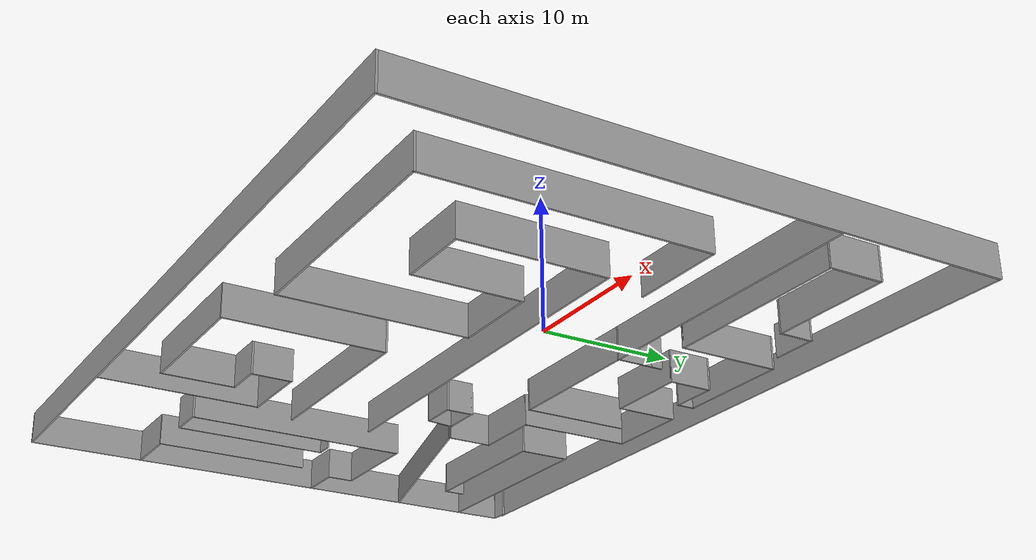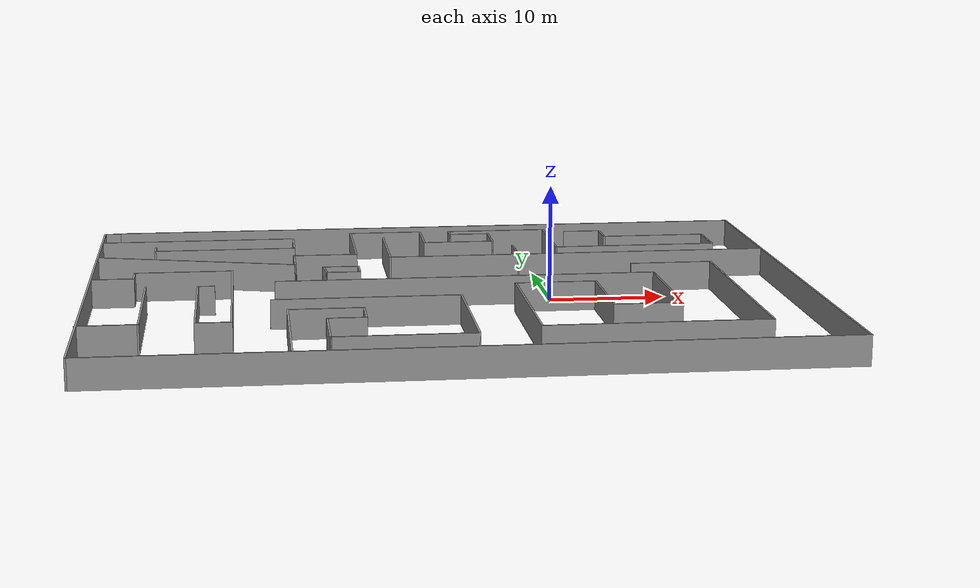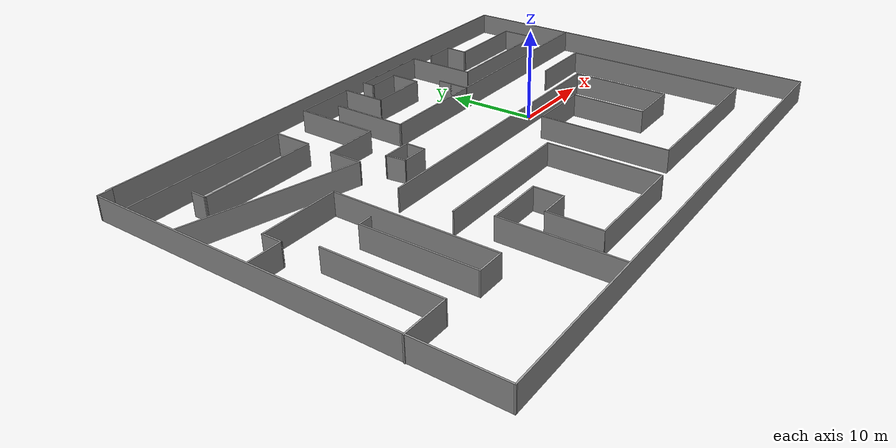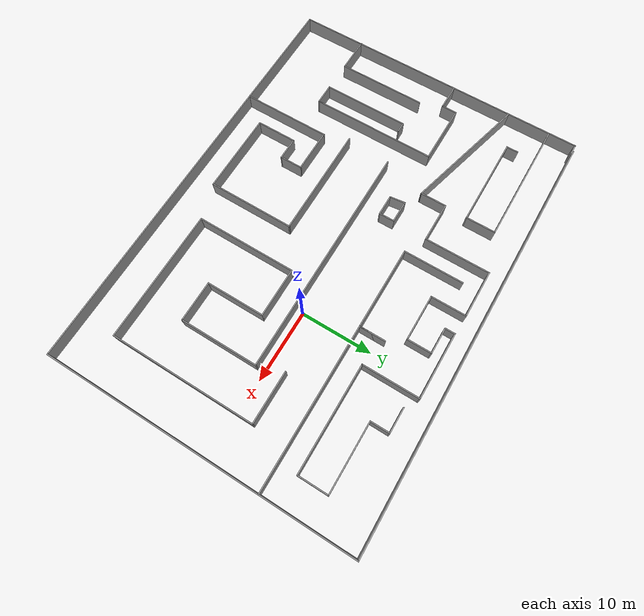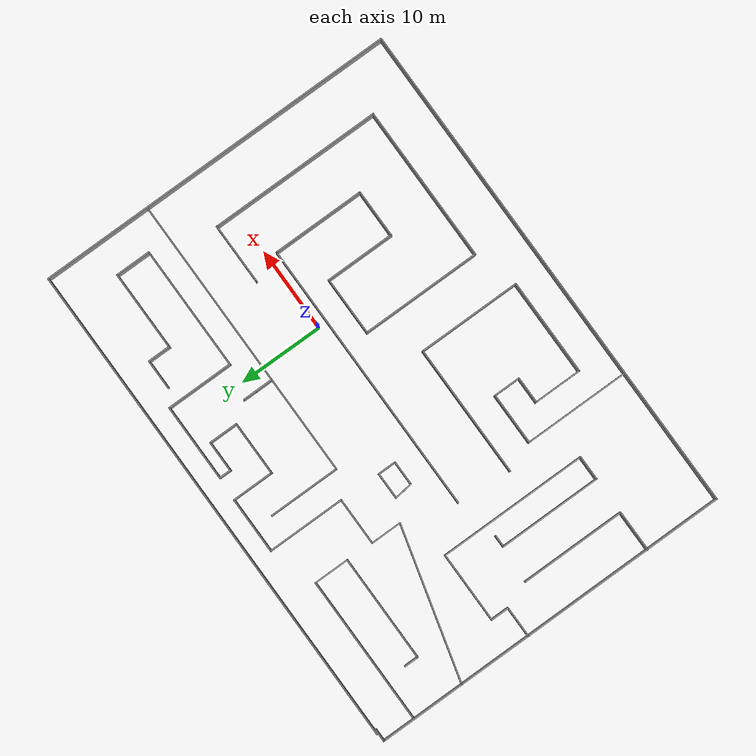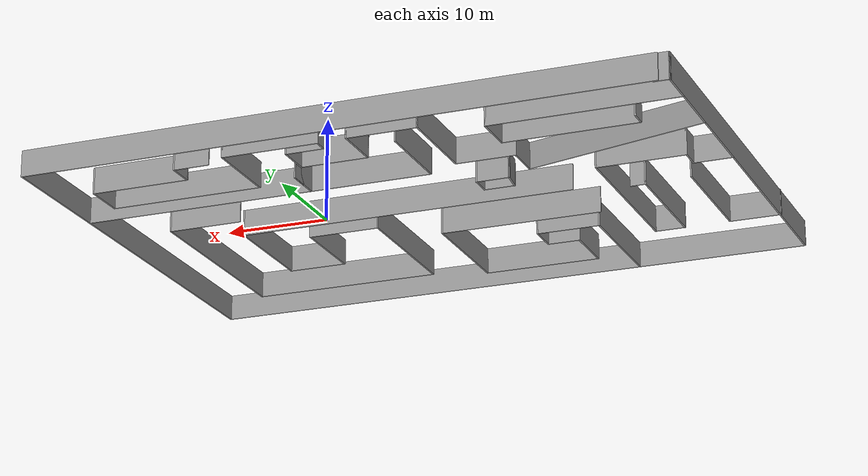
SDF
<?xml version='1.0'?>
<sdf version='1.6'>
  <model name='floorplan'>
    <pose frame=''>-9.29176 -1.54774 0 0 -0 0</pose>
    <link name='Wall_10'>
      <collision name='Wall_10_Collision'>
        <geometry>
          <box>
            <size>60.25 0.15 2.5</size>
          </box>
        </geometry>
        <pose frame=''>0 0 1.25 0 -0 0</pose>
      </collision>
      <visual name='Wall_10_Visual'>
        <pose frame=''>0 0 1.25 0 -0 0</pose>
        <geometry>
          <box>
            <size>60.25 0.15 2.5</size>
          </box>
        </geometry>
        <material>
          <script>
            <uri>file://media/materials/scripts/gazebo.material</uri>
            <name>Gazebo/Grey</name>
          </script>
          <ambient>1 1 1 1</ambient>
        </material>
        <meta>
          <layer>0</layer>
        </meta>
      </visual>
      <pose frame=''>0.03803 -21.675 0 0 -0 3.14159</pose>
    </link>
    <link name='Wall_11'>
      <collision name='Wall_11_Collision'>
        <geometry>
          <box>
            <size>43.25 0.15 2.5</size>
          </box>
        </geometry>
        <pose frame=''>0 0 1.25 0 -0 0</pose>
      </collision>
      <visual name='Wall_11_Visual'>
        <pose frame=''>0 0 1.25 0 -0 0</pose>
        <geometry>
          <box>
            <size>43.25 0.15 2.5</size>
          </box>
        </geometry>
        <material>
          <script>
            <uri>file://media/materials/scripts/gazebo.material</uri>
            <name>Gazebo/Grey</name>
          </script>
          <ambient>1 1 1 1</ambient>
        </material>
        <meta>
          <layer>0</layer>
        </meta>
      </visual>
      <pose frame=''>-30.012 -0.124999 0 0 -0 1.5708</pose>
    </link>
    <link name='Wall_12'>
      <collision name='Wall_12_Collision'>
        <geometry>
          <box>
            <size>0.25 0.15 2.5</size>
          </box>
        </geometry>
        <pose frame=''>0 0 1.25 0 -0 0</pose>
      </collision>
      <visual name='Wall_12_Visual'>
        <pose frame=''>0 0 1.25 0 -0 0</pose>
        <geometry>
          <box>
            <size>0.25 0.15 2.5</size>
          </box>
        </geometry>
        <material>
          <script>
            <uri>file://media/materials/scripts/gazebo.material</uri>
            <name>Gazebo/Grey</name>
          </script>
          <ambient>1 1 1 1</ambient>
        </material>
        <meta>
          <layer>0</layer>
        </meta>
      </visual>
      <pose frame=''>-29.999 21.4733 0 0 -0 1.309</pose>
    </link>
    <link name='Wall_13'>
      <collision name='Wall_13_Collision'>
        <geometry>
          <box>
            <size>1.5 0.15 2.5</size>
          </box>
        </geometry>
        <pose frame=''>0 0 1.25 0 -0 0</pose>
      </collision>
      <visual name='Wall_13_Visual'>
        <pose frame=''>0 0 1.25 0 -0 0</pose>
        <geometry>
          <box>
            <size>1.5 0.15 2.5</size>
          </box>
        </geometry>
        <material>
          <script>
            <uri>file://media/materials/scripts/gazebo.material</uri>
            <name>Gazebo/Grey</name>
          </script>
          <ambient>1 1 1 1</ambient>
        </material>
        <meta>
          <layer>0</layer>
        </meta>
      </visual>
      <pose frame=''>-29.3111 21.5216 0 0 -0 0</pose>
    </link>
    <link name='Wall_15'>
      <collision name='Wall_15_Collision'>
        <geometry>
          <box>
            <size>17.75 0.15 2.5</size>
          </box>
        </geometry>
        <pose frame=''>0 0 1.25 0 -0 0</pose>
      </collision>
      <visual name='Wall_15_Visual'>
        <pose frame=''>0 0 1.25 0 -0 0</pose>
        <geometry>
          <box>
            <size>17.75 0.15 2.5</size>
          </box>
        </geometry>
        <material>
          <script>
            <uri>file://media/materials/scripts/gazebo.material</uri>
            <name>Gazebo/Grey</name>
          </script>
          <ambient>1 1 1 1</ambient>
        </material>
        <meta>
          <layer>0</layer>
        </meta>
      </visual>
      <pose frame=''>-21.1943 17.621 0 0 -0 0</pose>
    </link>
    <link name='Wall_16'>
      <collision name='Wall_16_Collision'>
        <geometry>
          <box>
            <size>4.25 0.15 2.5</size>
          </box>
        </geometry>
        <pose frame=''>0 0 1.25 0 -0 0</pose>
      </collision>
      <visual name='Wall_16_Visual'>
        <pose frame=''>0 0 1.25 0 -0 0</pose>
        <geometry>
          <box>
            <size>4.25 0.15 2.5</size>
          </box>
        </geometry>
        <material>
          <script>
            <uri>file://media/materials/scripts/gazebo.material</uri>
            <name>Gazebo/Grey</name>
          </script>
          <ambient>1 1 1 1</ambient>
        </material>
        <meta>
          <layer>0</layer>
        </meta>
      </visual>
      <pose frame=''>-12.3943 15.571 0 0 -0 -1.5708</pose>
    </link>
    <link name='Wall_17'>
      <collision name='Wall_17_Collision'>
        <geometry>
          <box>
            <size>12.75 0.15 2.5</size>
          </box>
        </geometry>
        <pose frame=''>0 0 1.25 0 -0 0</pose>
      </collision>
      <visual name='Wall_17_Visual'>
        <pose frame=''>0 0 1.25 0 -0 0</pose>
        <geometry>
          <box>
            <size>12.75 0.15 2.5</size>
          </box>
        </geometry>
        <material>
          <script>
            <uri>file://media/materials/scripts/gazebo.material</uri>
            <name>Gazebo/Grey</name>
          </script>
          <ambient>1 1 1 1</ambient>
        </material>
        <meta>
          <layer>0</layer>
        </meta>
      </visual>
      <pose frame=''>-18.6943 13.521 0 0 -0 3.14159</pose>
    </link>
    <link name='Wall_18'>
      <collision name='Wall_18_Collision'>
        <geometry>
          <box>
            <size>1.75 0.15 2.5</size>
          </box>
        </geometry>
        <pose frame=''>0 0 1.25 0 -0 0</pose>
      </collision>
      <visual name='Wall_18_Visual'>
        <pose frame=''>0 0 1.25 0 -0 0</pose>
        <geometry>
          <box>
            <size>1.75 0.15 2.5</size>
          </box>
        </geometry>
        <material>
          <script>
            <uri>file://media/materials/scripts/gazebo.material</uri>
            <name>Gazebo/Grey</name>
          </script>
          <ambient>1 1 1 1</ambient>
        </material>
        <meta>
          <layer>0</layer>
        </meta>
      </visual>
      <pose frame=''>-24.9943 14.321 0 0 -0 1.5708</pose>
    </link>
    <link name='Wall_20'>
      <collision name='Wall_20_Collision'>
        <geometry>
          <box>
            <size>18.25 0.15 2.5</size>
          </box>
        </geometry>
        <pose frame=''>0 0 1.25 0 -0 0</pose>
      </collision>
      <visual name='Wall_20_Visual'>
        <pose frame=''>0 0 1.25 0 -0 0</pose>
        <geometry>
          <box>
            <size>18.25 0.15 2.5</size>
          </box>
        </geometry>
        <material>
          <script>
            <uri>file://media/materials/scripts/gazebo.material</uri>
            <name>Gazebo/Grey</name>
          </script>
          <ambient>1 1 1 1</ambient>
        </material>
        <meta>
          <layer>0</layer>
        </meta>
      </visual>
      <pose frame=''>-21.2527 9.09449 0 0 -0 -0.261799</pose>
    </link>
    <link name='Wall_21'>
      <collision name='Wall_21_Collision'>
        <geometry>
          <box>
            <size>3.75 0.15 2.5</size>
          </box>
        </geometry>
        <pose frame=''>0 0 1.25 0 -0 0</pose>
      </collision>
      <visual name='Wall_21_Visual'>
        <pose frame=''>0 0 1.25 0 -0 0</pose>
        <geometry>
          <box>
            <size>3.75 0.15 2.5</size>
          </box>
        </geometry>
        <material>
          <script>
            <uri>file://media/materials/scripts/gazebo.material</uri>
            <name>Gazebo/Grey</name>
          </script>
          <ambient>1 1 1 1</ambient>
        </material>
        <meta>
          <layer>0</layer>
        </meta>
      </visual>
      <pose frame=''>-12.5111 8.55218 0 0 -0 1.5708</pose>
    </link>
    <link name='Wall_22'>
      <collision name='Wall_22_Collision'>
        <geometry>
          <box>
            <size>5.75 0.15 2.5</size>
          </box>
        </geometry>
        <pose frame=''>0 0 1.25 0 -0 0</pose>
      </collision>
      <visual name='Wall_22_Visual'>
        <pose frame=''>0 0 1.25 0 -0 0</pose>
        <geometry>
          <box>
            <size>5.75 0.15 2.5</size>
          </box>
        </geometry>
        <material>
          <script>
            <uri>file://media/materials/scripts/gazebo.material</uri>
            <name>Gazebo/Grey</name>
          </script>
          <ambient>1 1 1 1</ambient>
        </material>
        <meta>
          <layer>0</layer>
        </meta>
      </visual>
      <pose frame=''>-9.71106 10.3522 0 0 -0 0</pose>
    </link>
    <link name='Wall_23'>
      <collision name='Wall_23_Collision'>
        <geometry>
          <box>
            <size>9.25 0.15 2.5</size>
          </box>
        </geometry>
        <pose frame=''>0 0 1.25 0 -0 0</pose>
      </collision>
      <visual name='Wall_23_Visual'>
        <pose frame=''>0 0 1.25 0 -0 0</pose>
        <geometry>
          <box>
            <size>9.25 0.15 2.5</size>
          </box>
        </geometry>
        <material>
          <script>
            <uri>file://media/materials/scripts/gazebo.material</uri>
            <name>Gazebo/Grey</name>
          </script>
          <ambient>1 1 1 1</ambient>
        </material>
        <meta>
          <layer>0</layer>
        </meta>
      </visual>
      <pose frame=''>-6.91106 14.9022 0 0 -0 1.5708</pose>
    </link>
    <link name='Wall_24'>
      <collision name='Wall_24_Collision'>
        <geometry>
          <box>
            <size>6.75 0.15 2.5</size>
          </box>
        </geometry>
        <pose frame=''>0 0 1.25 0 -0 0</pose>
      </collision>
      <visual name='Wall_24_Visual'>
        <pose frame=''>0 0 1.25 0 -0 0</pose>
        <geometry>
          <box>
            <size>6.75 0.15 2.5</size>
          </box>
        </geometry>
        <material>
          <script>
            <uri>file://media/materials/scripts/gazebo.material</uri>
            <name>Gazebo/Grey</name>
          </script>
          <ambient>1 1 1 1</ambient>
        </material>
        <meta>
          <layer>0</layer>
        </meta>
      </visual>
      <pose frame=''>-3.61106 19.4522 0 0 -0 0</pose>
    </link>
    <link name='Wall_25'>
      <collision name='Wall_25_Collision'>
        <geometry>
          <box>
            <size>5 0.15 2.5</size>
          </box>
        </geometry>
        <pose frame=''>0 0 1.25 0 -0 0</pose>
      </collision>
      <visual name='Wall_25_Visual'>
        <pose frame=''>0 0 1.25 0 -0 0</pose>
        <geometry>
          <box>
            <size>5 0.15 2.5</size>
          </box>
        </geometry>
        <material>
          <script>
            <uri>file://media/materials/scripts/gazebo.material</uri>
            <name>Gazebo/Grey</name>
          </script>
          <ambient>1 1 1 1</ambient>
        </material>
        <meta>
          <layer>0</layer>
        </meta>
      </visual>
      <pose frame=''>-0.311056 17.0272 0 0 -0 -1.5708</pose>
    </link>
    <link name='Wall_26'>
      <collision name='Wall_26_Collision'>
        <geometry>
          <box>
            <size>6.5 0.15 2.5</size>
          </box>
        </geometry>
        <pose frame=''>0 0 1.25 0 -0 0</pose>
      </collision>
      <visual name='Wall_26_Visual'>
        <pose frame=''>0 0 1.25 0 -0 0</pose>
        <geometry>
          <box>
            <size>6.5 0.15 2.5</size>
          </box>
        </geometry>
        <material>
          <script>
            <uri>file://media/materials/scripts/gazebo.material</uri>
            <name>Gazebo/Grey</name>
          </script>
          <ambient>1 1 1 1</ambient>
        </material>
        <meta>
          <layer>0</layer>
        </meta>
      </visual>
      <pose frame=''>2.86394 14.6022 0 0 -0 0</pose>
    </link>
    <link name='Wall_27'>
      <collision name='Wall_27_Collision'>
        <geometry>
          <box>
            <size>3.5 0.15 2.5</size>
          </box>
        </geometry>
        <pose frame=''>0 0 1.25 0 -0 0</pose>
      </collision>
      <visual name='Wall_27_Visual'>
        <pose frame=''>0 0 1.25 0 -0 0</pose>
        <geometry>
          <box>
            <size>3.5 0.15 2.5</size>
          </box>
        </geometry>
        <material>
          <script>
            <uri>file://media/materials/scripts/gazebo.material</uri>
            <name>Gazebo/Grey</name>
          </script>
          <ambient>1 1 1 1</ambient>
        </material>
        <meta>
          <layer>0</layer>
        </meta>
      </visual>
      <pose frame=''>6.03894 16.2772 0 0 -0 1.5708</pose>
    </link>
    <link name='Wall_28'>
      <collision name='Wall_28_Collision'>
        <geometry>
          <box>
            <size>3.75 0.15 2.5</size>
          </box>
        </geometry>
        <pose frame=''>0 0 1.25 0 -0 0</pose>
      </collision>
      <visual name='Wall_28_Visual'>
        <pose frame=''>0 0 1.25 0 -0 0</pose>
        <geometry>
          <box>
            <size>3.75 0.15 2.5</size>
          </box>
        </geometry>
        <material>
          <script>
            <uri>file://media/materials/scripts/gazebo.material</uri>
            <name>Gazebo/Grey</name>
          </script>
          <ambient>1 1 1 1</ambient>
        </material>
        <meta>
          <layer>0</layer>
        </meta>
      </visual>
      <pose frame=''>4.23894 17.9522 0 0 -0 3.14159</pose>
    </link>
    <link name='Wall_29'>
      <collision name='Wall_29_Collision'>
        <geometry>
          <box>
            <size>1.5 0.15 2.5</size>
          </box>
        </geometry>
        <pose frame=''>0 0 1.25 0 -0 0</pose>
      </collision>
      <visual name='Wall_29_Visual'>
        <pose frame=''>0 0 1.25 0 -0 0</pose>
        <geometry>
          <box>
            <size>1.5 0.15 2.5</size>
          </box>
        </geometry>
        <material>
          <script>
            <uri>file://media/materials/scripts/gazebo.material</uri>
            <name>Gazebo/Grey</name>
          </script>
          <ambient>1 1 1 1</ambient>
        </material>
        <meta>
          <layer>0</layer>
        </meta>
      </visual>
      <pose frame=''>2.43894 18.6272 0 0 -0 1.5708</pose>
    </link>
    <link name='Wall_30'>
      <collision name='Wall_30_Collision'>
        <geometry>
          <box>
            <size>9.25 0.15 2.5</size>
          </box>
        </geometry>
        <pose frame=''>0 0 1.25 0 -0 0</pose>
      </collision>
      <visual name='Wall_30_Visual'>
        <pose frame=''>0 0 1.25 0 -0 0</pose>
        <geometry>
          <box>
            <size>9.25 0.15 2.5</size>
          </box>
        </geometry>
        <material>
          <script>
            <uri>file://media/materials/scripts/gazebo.material</uri>
            <name>Gazebo/Grey</name>
          </script>
          <ambient>1 1 1 1</ambient>
        </material>
        <meta>
          <layer>0</layer>
        </meta>
      </visual>
      <pose frame=''>6.98894 19.3022 0 0 -0 0</pose>
    </link>
    <link name='Wall_31'>
      <collision name='Wall_31_Collision'>
        <geometry>
          <box>
            <size>8 0.15 2.5</size>
          </box>
        </geometry>
        <pose frame=''>0 0 1.25 0 -0 0</pose>
      </collision>
      <visual name='Wall_31_Visual'>
        <pose frame=''>0 0 1.25 0 -0 0</pose>
        <geometry>
          <box>
            <size>8 0.15 2.5</size>
          </box>
        </geometry>
        <material>
          <script>
            <uri>file://media/materials/scripts/gazebo.material</uri>
            <name>Gazebo/Grey</name>
          </script>
          <ambient>1 1 1 1</ambient>
        </material>
        <meta>
          <layer>0</layer>
        </meta>
      </visual>
      <pose frame=''>11.5389 15.3772 0 0 -0 -1.5708</pose>
    </link>
    <link name='Wall_32'>
      <collision name='Wall_32_Collision'>
        <geometry>
          <box>
            <size>14.75 0.15 2.5</size>
          </box>
        </geometry>
        <pose frame=''>0 0 1.25 0 -0 0</pose>
      </collision>
      <visual name='Wall_32_Visual'>
        <pose frame=''>0 0 1.25 0 -0 0</pose>
        <geometry>
          <box>
            <size>14.75 0.15 2.5</size>
          </box>
        </geometry>
        <material>
          <script>
            <uri>file://media/materials/scripts/gazebo.material</uri>
            <name>Gazebo/Grey</name>
          </script>
          <ambient>1 1 1 1</ambient>
        </material>
        <meta>
          <layer>0</layer>
        </meta>
      </visual>
      <pose frame=''>18.8389 11.4522 0 0 -0 0</pose>
    </link>
    <link name='Wall_33'>
      <collision name='Wall_33_Collision'>
        <geometry>
          <box>
            <size>4.25 0.15 2.5</size>
          </box>
        </geometry>
        <pose frame=''>0 0 1.25 0 -0 0</pose>
      </collision>
      <visual name='Wall_33_Visual'>
        <pose frame=''>0 0 1.25 0 -0 0</pose>
        <geometry>
          <box>
            <size>4.25 0.15 2.5</size>
          </box>
        </geometry>
        <material>
          <script>
            <uri>file://media/materials/scripts/gazebo.material</uri>
            <name>Gazebo/Grey</name>
          </script>
          <ambient>1 1 1 1</ambient>
        </material>
        <meta>
          <layer>0</layer>
        </meta>
      </visual>
      <pose frame=''>26.1389 13.5022 0 0 -0 1.5708</pose>
    </link>
    <link name='Wall_34'>
      <collision name='Wall_34_Collision'>
        <geometry>
          <box>
            <size>9.5 0.15 2.5</size>
          </box>
        </geometry>
        <pose frame=''>0 0 1.25 0 -0 0</pose>
      </collision>
      <visual name='Wall_34_Visual'>
        <pose frame=''>0 0 1.25 0 -0 0</pose>
        <geometry>
          <box>
            <size>9.5 0.15 2.5</size>
          </box>
        </geometry>
        <material>
          <script>
            <uri>file://media/materials/scripts/gazebo.material</uri>
            <name>Gazebo/Grey</name>
          </script>
          <ambient>1 1 1 1</ambient>
        </material>
        <meta>
          <layer>0</layer>
        </meta>
      </visual>
      <pose frame=''>21.4639 15.5522 0 0 -0 3.14159</pose>
    </link>
    <link name='Wall_35'>
      <collision name='Wall_35_Collision'>
        <geometry>
          <box>
            <size>2.75 0.15 2.5</size>
          </box>
        </geometry>
        <pose frame=''>0 0 1.25 0 -0 0</pose>
      </collision>
      <visual name='Wall_35_Visual'>
        <pose frame=''>0 0 1.25 0 -0 0</pose>
        <geometry>
          <box>
            <size>2.75 0.15 2.5</size>
          </box>
        </geometry>
        <material>
          <script>
            <uri>file://media/materials/scripts/gazebo.material</uri>
            <name>Gazebo/Grey</name>
          </script>
          <ambient>1 1 1 1</ambient>
        </material>
        <meta>
          <layer>0</layer>
        </meta>
      </visual>
      <pose frame=''>16.7889 16.8522 0 0 -0 1.5708</pose>
    </link>
    <link name='Wall_36'>
      <collision name='Wall_36_Collision'>
        <geometry>
          <box>
            <size>3.5 0.15 2.5</size>
          </box>
        </geometry>
        <pose frame=''>0 0 1.25 0 -0 0</pose>
      </collision>
      <visual name='Wall_36_Visual'>
        <pose frame=''>0 0 1.25 0 -0 0</pose>
        <geometry>
          <box>
            <size>3.5 0.15 2.5</size>
          </box>
        </geometry>
        <material>
          <script>
            <uri>file://media/materials/scripts/gazebo.material</uri>
            <name>Gazebo/Grey</name>
          </script>
          <ambient>1 1 1 1</ambient>
        </material>
        <meta>
          <layer>0</layer>
        </meta>
      </visual>
      <pose frame=''>15.1139 18.1522 0 0 -0 3.14159</pose>
    </link>
    <link name='Wall_38'>
      <collision name='Wall_38_Collision'>
        <geometry>
          <box>
            <size>22.5 0.15 2.5</size>
          </box>
        </geometry>
        <pose frame=''>0 0 1.25 0 -0 0</pose>
      </collision>
      <visual name='Wall_38_Visual'>
        <pose frame=''>0 0 1.25 0 -0 0</pose>
        <geometry>
          <box>
            <size>22.5 0.15 2.5</size>
          </box>
        </geometry>
        <material>
          <script>
            <uri>file://media/materials/scripts/gazebo.material</uri>
            <name>Gazebo/Grey</name>
          </script>
          <ambient>1 1 1 1</ambient>
        </material>
        <meta>
          <layer>0</layer>
        </meta>
      </visual>
      <pose frame=''>18.8008 8.83295 0 0 -0 3.14159</pose>
    </link>
    <link name='Wall_39'>
      <collision name='Wall_39_Collision'>
        <geometry>
          <box>
            <size>3.75 0.15 2.5</size>
          </box>
        </geometry>
        <pose frame=''>0 0 1.25 0 -0 0</pose>
      </collision>
      <visual name='Wall_39_Visual'>
        <pose frame=''>0 0 1.25 0 -0 0</pose>
        <geometry>
          <box>
            <size>3.75 0.15 2.5</size>
          </box>
        </geometry>
        <material>
          <script>
            <uri>file://media/materials/scripts/gazebo.material</uri>
            <name>Gazebo/Grey</name>
          </script>
          <ambient>1 1 1 1</ambient>
        </material>
        <meta>
          <layer>0</layer>
        </meta>
      </visual>
      <pose frame=''>7.62583 10.6329 0 0 -0 1.5708</pose>
    </link>
    <link name='Wall_40'>
      <collision name='Wall_40_Collision'>
        <geometry>
          <box>
            <size>3.75 0.15 2.5</size>
          </box>
        </geometry>
        <pose frame=''>0 0 1.25 0 -0 0</pose>
      </collision>
      <visual name='Wall_40_Visual'>
        <pose frame=''>0 0 1.25 0 -0 0</pose>
        <geometry>
          <box>
            <size>3.75 0.15 2.5</size>
          </box>
        </geometry>
        <material>
          <script>
            <uri>file://media/materials/scripts/gazebo.material</uri>
            <name>Gazebo/Grey</name>
          </script>
          <ambient>1 1 1 1</ambient>
        </material>
        <meta>
          <layer>0</layer>
        </meta>
      </visual>
      <pose frame=''>7.62583 10.6329 0 0 -0 -1.5708</pose>
    </link>
    <link name='Wall_41'>
      <collision name='Wall_41_Collision'>
        <geometry>
          <box>
            <size>11.75 0.15 2.5</size>
          </box>
        </geometry>
        <pose frame=''>0 0 1.25 0 -0 0</pose>
      </collision>
      <visual name='Wall_41_Visual'>
        <pose frame=''>0 0 1.25 0 -0 0</pose>
        <geometry>
          <box>
            <size>11.75 0.15 2.5</size>
          </box>
        </geometry>
        <material>
          <script>
            <uri>file://media/materials/scripts/gazebo.material</uri>
            <name>Gazebo/Grey</name>
          </script>
          <ambient>1 1 1 1</ambient>
        </material>
        <meta>
          <layer>0</layer>
        </meta>
      </visual>
      <pose frame=''>1.82583 8.83295 0 0 -0 3.14159</pose>
    </link>
    <link name='Wall_42'>
      <collision name='Wall_42_Collision'>
        <geometry>
          <box>
            <size>8.5 0.15 2.5</size>
          </box>
        </geometry>
        <pose frame=''>0 0 1.25 0 -0 0</pose>
      </collision>
      <visual name='Wall_42_Visual'>
        <pose frame=''>0 0 1.25 0 -0 0</pose>
        <geometry>
          <box>
            <size>8.5 0.15 2.5</size>
          </box>
        </geometry>
        <material>
          <script>
            <uri>file://media/materials/scripts/gazebo.material</uri>
            <name>Gazebo/Grey</name>
          </script>
          <ambient>1 1 1 1</ambient>
        </material>
        <meta>
          <layer>0</layer>
        </meta>
      </visual>
      <pose frame=''>-3.97417 13.0079 0 0 -0 1.5708</pose>
    </link>
    <link name='Wall_44'>
      <collision name='Wall_44_Collision'>
        <geometry>
          <box>
            <size>3.75 0.15 2.5</size>
          </box>
        </geometry>
        <pose frame=''>0 0 1.25 0 -0 0</pose>
      </collision>
      <visual name='Wall_44_Visual'>
        <pose frame=''>0 0 1.25 0 -0 0</pose>
        <geometry>
          <box>
            <size>3.75 0.15 2.5</size>
          </box>
        </geometry>
        <material>
          <script>
            <uri>file://media/materials/scripts/gazebo.material</uri>
            <name>Gazebo/Grey</name>
          </script>
          <ambient>1 1 1 1</ambient>
        </material>
        <meta>
          <layer>0</layer>
        </meta>
      </visual>
      <pose frame=''>-28.1943 2.81152 0 0 -0 0</pose>
    </link>
    <link name='Wall_45'>
      <collision name='Wall_45_Collision'>
        <geometry>
          <box>
            <size>2.25 0.15 2.5</size>
          </box>
        </geometry>
        <pose frame=''>0 0 1.25 0 -0 0</pose>
      </collision>
      <visual name='Wall_45_Visual'>
        <pose frame=''>0 0 1.25 0 -0 0</pose>
        <geometry>
          <box>
            <size>2.25 0.15 2.5</size>
          </box>
        </geometry>
        <material>
          <script>
            <uri>file://media/materials/scripts/gazebo.material</uri>
            <name>Gazebo/Grey</name>
          </script>
          <ambient>1 1 1 1</ambient>
        </material>
        <meta>
          <layer>0</layer>
        </meta>
      </visual>
      <pose frame=''>-26.3943 3.86152 0 0 -0 1.5708</pose>
    </link>
    <link name='Wall_46'>
      <collision name='Wall_46_Collision'>
        <geometry>
          <box>
            <size>8.5 0.15 2.5</size>
          </box>
        </geometry>
        <pose frame=''>0 0 1.25 0 -0 0</pose>
      </collision>
      <visual name='Wall_46_Visual'>
        <pose frame=''>0 0 1.25 0 -0 0</pose>
        <geometry>
          <box>
            <size>8.5 0.15 2.5</size>
          </box>
        </geometry>
        <material>
          <script>
            <uri>file://media/materials/scripts/gazebo.material</uri>
            <name>Gazebo/Grey</name>
          </script>
          <ambient>1 1 1 1</ambient>
        </material>
        <meta>
          <layer>0</layer>
        </meta>
      </visual>
      <pose frame=''>-22.2193 4.91152 0 0 -0 0</pose>
    </link>
    <link name='Wall_47'>
      <collision name='Wall_47_Collision'>
        <geometry>
          <box>
            <size>17.75 0.15 2.5</size>
          </box>
        </geometry>
        <pose frame=''>0 0 1.25 0 -0 0</pose>
      </collision>
      <visual name='Wall_47_Visual'>
        <pose frame=''>0 0 1.25 0 -0 0</pose>
        <geometry>
          <box>
            <size>17.75 0.15 2.5</size>
          </box>
        </geometry>
        <material>
          <script>
            <uri>file://media/materials/scripts/gazebo.material</uri>
            <name>Gazebo/Grey</name>
          </script>
          <ambient>1 1 1 1</ambient>
        </material>
        <meta>
          <layer>0</layer>
        </meta>
      </visual>
      <pose frame=''>-18.0443 -3.88848 0 0 -0 -1.5708</pose>
    </link>
    <link name='Wall_48'>
      <collision name='Wall_48_Collision'>
        <geometry>
          <box>
            <size>3 0.15 2.5</size>
          </box>
        </geometry>
        <pose frame=''>0 0 1.25 0 -0 0</pose>
      </collision>
      <visual name='Wall_48_Visual'>
        <pose frame=''>0 0 1.25 0 -0 0</pose>
        <geometry>
          <box>
            <size>3 0.15 2.5</size>
          </box>
        </geometry>
        <material>
          <script>
            <uri>file://media/materials/scripts/gazebo.material</uri>
            <name>Gazebo/Grey</name>
          </script>
          <ambient>1 1 1 1</ambient>
        </material>
        <meta>
          <layer>0</layer>
        </meta>
      </visual>
      <pose frame=''>-19.4693 -12.6885 0 0 -0 3.14159</pose>
    </link>
    <link name='Wall_49'>
      <collision name='Wall_49_Collision'>
        <geometry>
          <box>
            <size>12.25 0.15 2.5</size>
          </box>
        </geometry>
        <pose frame=''>0 0 1.25 0 -0 0</pose>
      </collision>
      <visual name='Wall_49_Visual'>
        <pose frame=''>0 0 1.25 0 -0 0</pose>
        <geometry>
          <box>
            <size>12.25 0.15 2.5</size>
          </box>
        </geometry>
        <material>
          <script>
            <uri>file://media/materials/scripts/gazebo.material</uri>
            <name>Gazebo/Grey</name>
          </script>
          <ambient>1 1 1 1</ambient>
        </material>
        <meta>
          <layer>0</layer>
        </meta>
      </visual>
      <pose frame=''>-20.8943 -6.63848 0 0 -0 1.5708</pose>
    </link>
    <link name='Wall_50'>
      <collision name='Wall_50_Collision'>
        <geometry>
          <box>
            <size>1.5 0.15 2.5</size>
          </box>
        </geometry>
        <pose frame=''>0 0 1.25 0 -0 0</pose>
      </collision>
      <visual name='Wall_50_Visual'>
        <pose frame=''>0 0 1.25 0 -0 0</pose>
        <geometry>
          <box>
            <size>1.5 0.15 2.5</size>
          </box>
        </geometry>
        <material>
          <script>
            <uri>file://media/materials/scripts/gazebo.material</uri>
            <name>Gazebo/Grey</name>
          </script>
          <ambient>1 1 1 1</ambient>
        </material>
        <meta>
          <layer>0</layer>
        </meta>
      </visual>
      <pose frame=''>-20.2193 -0.588479 0 0 -0 0</pose>
    </link>
    <link name='Wall_53'>
      <collision name='Wall_53_Collision'>
        <geometry>
          <box>
            <size>5 0.15 2.5</size>
          </box>
        </geometry>
        <pose frame=''>0 0 1.25 0 -0 0</pose>
      </collision>
      <visual name='Wall_53_Visual'>
        <pose frame=''>0 0 1.25 0 -0 0</pose>
        <geometry>
          <box>
            <size>5 0.15 2.5</size>
          </box>
        </geometry>
        <material>
          <script>
            <uri>file://media/materials/scripts/gazebo.material</uri>
            <name>Gazebo/Grey</name>
          </script>
          <ambient>1 1 1 1</ambient>
        </material>
        <meta>
          <layer>0</layer>
        </meta>
      </visual>
      <pose frame=''>-27.663 -12.6612 0 0 -0 0</pose>
    </link>
    <link name='Wall_54'>
      <collision name='Wall_54_Collision'>
        <geometry>
          <box>
            <size>12.5 0.15 2.5</size>
          </box>
        </geometry>
        <pose frame=''>0 0 1.25 0 -0 0</pose>
      </collision>
      <visual name='Wall_54_Visual'>
        <pose frame=''>0 0 1.25 0 -0 0</pose>
        <geometry>
          <box>
            <size>12.5 0.15 2.5</size>
          </box>
        </geometry>
        <material>
          <script>
            <uri>file://media/materials/scripts/gazebo.material</uri>
            <name>Gazebo/Grey</name>
          </script>
          <ambient>1 1 1 1</ambient>
        </material>
        <meta>
          <layer>0</layer>
        </meta>
      </visual>
      <pose frame=''>-25.238 -6.48622 0 0 -0 1.5708</pose>
    </link>
    <link name='Wall_56'>
      <collision name='Wall_56_Collision'>
        <geometry>
          <box>
            <size>12.5 0.15 2.5</size>
          </box>
        </geometry>
        <pose frame=''>0 0 1.25 0 -0 0</pose>
      </collision>
      <visual name='Wall_56_Visual'>
        <pose frame=''>0 0 1.25 0 -0 0</pose>
        <geometry>
          <box>
            <size>12.5 0.15 2.5</size>
          </box>
        </geometry>
        <material>
          <script>
            <uri>file://media/materials/scripts/gazebo.material</uri>
            <name>Gazebo/Grey</name>
          </script>
          <ambient>1 1 1 1</ambient>
        </material>
        <meta>
          <layer>0</layer>
        </meta>
      </visual>
      <pose frame=''>-13.6287 -15.3965 0 0 -0 1.5708</pose>
    </link>
    <link name='Wall_57'>
      <collision name='Wall_57_Collision'>
        <geometry>
          <box>
            <size>6.25 0.15 2.5</size>
          </box>
        </geometry>
        <pose frame=''>0 0 1.25 0 -0 0</pose>
      </collision>
      <visual name='Wall_57_Visual'>
        <pose frame=''>0 0 1.25 0 -0 0</pose>
        <geometry>
          <box>
            <size>6.25 0.15 2.5</size>
          </box>
        </geometry>
        <material>
          <script>
            <uri>file://media/materials/scripts/gazebo.material</uri>
            <name>Gazebo/Grey</name>
          </script>
          <ambient>1 1 1 1</ambient>
        </material>
        <meta>
          <layer>0</layer>
        </meta>
      </visual>
      <pose frame=''>-10.5787 -9.22155 0 0 -0 0</pose>
    </link>
    <link name='Wall_58'>
      <collision name='Wall_58_Collision'>
        <geometry>
          <box>
            <size>3.25 0.15 2.5</size>
          </box>
        </geometry>
        <pose frame=''>0 0 1.25 0 -0 0</pose>
      </collision>
      <visual name='Wall_58_Visual'>
        <pose frame=''>0 0 1.25 0 -0 0</pose>
        <geometry>
          <box>
            <size>3.25 0.15 2.5</size>
          </box>
        </geometry>
        <material>
          <script>
            <uri>file://media/materials/scripts/gazebo.material</uri>
            <name>Gazebo/Grey</name>
          </script>
          <ambient>1 1 1 1</ambient>
        </material>
        <meta>
          <layer>0</layer>
        </meta>
      </visual>
      <pose frame=''>-7.52868 -10.7715 0 0 -0 -1.5708</pose>
    </link>
    <link name='Wall_59'>
      <collision name='Wall_59_Collision'>
        <geometry>
          <box>
            <size>3.25 0.15 2.5</size>
          </box>
        </geometry>
        <pose frame=''>0 0 1.25 0 -0 0</pose>
      </collision>
      <visual name='Wall_59_Visual'>
        <pose frame=''>0 0 1.25 0 -0 0</pose>
        <geometry>
          <box>
            <size>3.25 0.15 2.5</size>
          </box>
        </geometry>
        <material>
          <script>
            <uri>file://media/materials/scripts/gazebo.material</uri>
            <name>Gazebo/Grey</name>
          </script>
          <ambient>1 1 1 1</ambient>
        </material>
        <meta>
          <layer>0</layer>
        </meta>
      </visual>
      <pose frame=''>-9.07868 -12.3215 0 0 -0 3.14159</pose>
    </link>
    <link name='Wall_60'>
      <collision name='Wall_60_Collision'>
        <geometry>
          <box>
            <size>5.75 0.15 2.5</size>
          </box>
        </geometry>
        <pose frame=''>0 0 1.25 0 -0 0</pose>
      </collision>
      <visual name='Wall_60_Visual'>
        <pose frame=''>0 0 1.25 0 -0 0</pose>
        <geometry>
          <box>
            <size>5.75 0.15 2.5</size>
          </box>
        </geometry>
        <material>
          <script>
            <uri>file://media/materials/scripts/gazebo.material</uri>
            <name>Gazebo/Grey</name>
          </script>
          <ambient>1 1 1 1</ambient>
        </material>
        <meta>
          <layer>0</layer>
        </meta>
      </visual>
      <pose frame=''>-10.6287 -15.1215 0 0 -0 -1.5708</pose>
    </link>
    <link name='Wall_61'>
      <collision name='Wall_61_Collision'>
        <geometry>
          <box>
            <size>11.5 0.15 2.5</size>
          </box>
        </geometry>
        <pose frame=''>0 0 1.25 0 -0 0</pose>
      </collision>
      <visual name='Wall_61_Visual'>
        <pose frame=''>0 0 1.25 0 -0 0</pose>
        <geometry>
          <box>
            <size>11.5 0.15 2.5</size>
          </box>
        </geometry>
        <material>
          <script>
            <uri>file://media/materials/scripts/gazebo.material</uri>
            <name>Gazebo/Grey</name>
          </script>
          <ambient>1 1 1 1</ambient>
        </material>
        <meta>
          <layer>0</layer>
        </meta>
      </visual>
      <pose frame=''>-4.95368 -17.9215 0 0 -0 0</pose>
    </link>
    <link name='Wall_62'>
      <collision name='Wall_62_Collision'>
        <geometry>
          <box>
            <size>12.25 0.15 2.5</size>
          </box>
        </geometry>
        <pose frame=''>0 0 1.25 0 -0 0</pose>
      </collision>
      <visual name='Wall_62_Visual'>
        <pose frame=''>0 0 1.25 0 -0 0</pose>
        <geometry>
          <box>
            <size>12.25 0.15 2.5</size>
          </box>
        </geometry>
        <material>
          <script>
            <uri>file://media/materials/scripts/gazebo.material</uri>
            <name>Gazebo/Grey</name>
          </script>
          <ambient>1 1 1 1</ambient>
        </material>
        <meta>
          <layer>0</layer>
        </meta>
      </visual>
      <pose frame=''>0.721322 -11.8715 0 0 -0 1.5708</pose>
    </link>
    <link name='Wall_63'>
      <collision name='Wall_63_Collision'>
        <geometry>
          <box>
            <size>15.75 0.15 2.5</size>
          </box>
        </geometry>
        <pose frame=''>0 0 1.25 0 -0 0</pose>
      </collision>
      <visual name='Wall_63_Visual'>
        <pose frame=''>0 0 1.25 0 -0 0</pose>
        <geometry>
          <box>
            <size>15.75 0.15 2.5</size>
          </box>
        </geometry>
        <material>
          <script>
            <uri>file://media/materials/scripts/gazebo.material</uri>
            <name>Gazebo/Grey</name>
          </script>
          <ambient>1 1 1 1</ambient>
        </material>
        <meta>
          <layer>0</layer>
        </meta>
      </visual>
      <pose frame=''>-7.07868 -5.82155 0 0 -0 3.14159</pose>
    </link>
    <link name='Wall_67'>
      <collision name='Wall_67_Collision'>
        <geometry>
          <box>
            <size>20.5 0.15 2.5</size>
          </box>
        </geometry>
        <pose frame=''>0 0 1.25 0 -0 0</pose>
      </collision>
      <visual name='Wall_67_Visual'>
        <pose frame=''>0 0 1.25 0 -0 0</pose>
        <geometry>
          <box>
            <size>20.5 0.15 2.5</size>
          </box>
        </geometry>
        <material>
          <script>
            <uri>file://media/materials/scripts/gazebo.material</uri>
            <name>Gazebo/Grey</name>
          </script>
          <ambient>1 1 1 1</ambient>
        </material>
        <meta>
          <layer>0</layer>
        </meta>
      </visual>
      <pose frame=''>24.1165 -6.12936 0 0 -0 -1.5708</pose>
    </link>
    <link name='Wall_68'>
      <collision name='Wall_68_Collision'>
        <geometry>
          <box>
            <size>18.5 0.15 2.5</size>
          </box>
        </geometry>
        <pose frame=''>0 0 1.25 0 -0 0</pose>
      </collision>
      <visual name='Wall_68_Visual'>
        <pose frame=''>0 0 1.25 0 -0 0</pose>
        <geometry>
          <box>
            <size>18.5 0.15 2.5</size>
          </box>
        </geometry>
        <material>
          <script>
            <uri>file://media/materials/scripts/gazebo.material</uri>
            <name>Gazebo/Grey</name>
          </script>
          <ambient>1 1 1 1</ambient>
        </material>
        <meta>
          <layer>0</layer>
        </meta>
      </visual>
      <pose frame=''>14.9415 -16.3044 0 0 -0 3.14159</pose>
    </link>
    <link name='Wall_69'>
      <collision name='Wall_69_Collision'>
        <geometry>
          <box>
            <size>14.25 0.15 2.5</size>
          </box>
        </geometry>
        <pose frame=''>0 0 1.25 0 -0 0</pose>
      </collision>
      <visual name='Wall_69_Visual'>
        <pose frame=''>0 0 1.25 0 -0 0</pose>
        <geometry>
          <box>
            <size>14.25 0.15 2.5</size>
          </box>
        </geometry>
        <material>
          <script>
            <uri>file://media/materials/scripts/gazebo.material</uri>
            <name>Gazebo/Grey</name>
          </script>
          <ambient>1 1 1 1</ambient>
        </material>
        <meta>
          <layer>0</layer>
        </meta>
      </visual>
      <pose frame=''>5.76645 -9.25436 0 0 -0 1.5708</pose>
    </link>
    <link name='Wall_72'>
      <collision name='Wall_72_Collision'>
        <geometry>
          <box>
            <size>7.25 0.15 2.5</size>
          </box>
        </geometry>
        <pose frame=''>0 0 1.25 0 -0 0</pose>
      </collision>
      <visual name='Wall_72_Visual'>
        <pose frame=''>0 0 1.25 0 -0 0</pose>
        <geometry>
          <box>
            <size>7.25 0.15 2.5</size>
          </box>
        </geometry>
        <material>
          <script>
            <uri>file://media/materials/scripts/gazebo.material</uri>
            <name>Gazebo/Grey</name>
          </script>
          <ambient>1 1 1 1</ambient>
        </material>
        <meta>
          <layer>0</layer>
        </meta>
      </visual>
      <pose frame=''>20.5665 4.04564 0 0 -0 3.14159</pose>
    </link>
    <link name='Wall_74'>
      <collision name='Wall_74_Collision'>
        <geometry>
          <box>
            <size>7 0.15 2.5</size>
          </box>
        </geometry>
        <pose frame=''>0 0 1.25 0 -0 0</pose>
      </collision>
      <visual name='Wall_74_Visual'>
        <pose frame=''>0 0 1.25 0 -0 0</pose>
        <geometry>
          <box>
            <size>7 0.15 2.5</size>
          </box>
        </geometry>
        <material>
          <script>
            <uri>file://media/materials/scripts/gazebo.material</uri>
            <name>Gazebo/Grey</name>
          </script>
          <ambient>1 1 1 1</ambient>
        </material>
        <meta>
          <layer>0</layer>
        </meta>
      </visual>
      <pose frame=''>9.19145 -2.20436 0 0 -0 0</pose>
    </link>
    <link name='Wall_75'>
      <collision name='Wall_75_Collision'>
        <geometry>
          <box>
            <size>8.25 0.15 2.5</size>
          </box>
        </geometry>
        <pose frame=''>0 0 1.25 0 -0 0</pose>
      </collision>
      <visual name='Wall_75_Visual'>
        <pose frame=''>0 0 1.25 0 -0 0</pose>
        <geometry>
          <box>
            <size>8.25 0.15 2.5</size>
          </box>
        </geometry>
        <material>
          <script>
            <uri>file://media/materials/scripts/gazebo.material</uri>
            <name>Gazebo/Grey</name>
          </script>
          <ambient>1 1 1 1</ambient>
        </material>
        <meta>
          <layer>0</layer>
        </meta>
      </visual>
      <pose frame=''>12.6165 -6.25436 0 0 -0 -1.5708</pose>
    </link>
    <link name='Wall_76'>
      <collision name='Wall_76_Collision'>
        <geometry>
          <box>
            <size>5.75 0.15 2.5</size>
          </box>
        </geometry>
        <pose frame=''>0 0 1.25 0 -0 0</pose>
      </collision>
      <visual name='Wall_76_Visual'>
        <pose frame=''>0 0 1.25 0 -0 0</pose>
        <geometry>
          <box>
            <size>5.75 0.15 2.5</size>
          </box>
        </geometry>
        <material>
          <script>
            <uri>file://media/materials/scripts/gazebo.material</uri>
            <name>Gazebo/Grey</name>
          </script>
          <ambient>1 1 1 1</ambient>
        </material>
        <meta>
          <layer>0</layer>
        </meta>
      </visual>
      <pose frame=''>15.4165 -10.3044 0 0 -0 0</pose>
    </link>
    <link name='Wall_77'>
      <collision name='Wall_77_Collision'>
        <geometry>
          <box>
            <size>11 0.15 2.5</size>
          </box>
        </geometry>
        <pose frame=''>0 0 1.25 0 -0 0</pose>
      </collision>
      <visual name='Wall_77_Visual'>
        <pose frame=''>0 0 1.25 0 -0 0</pose>
        <geometry>
          <box>
            <size>11 0.15 2.5</size>
          </box>
        </geometry>
        <material>
          <script>
            <uri>file://media/materials/scripts/gazebo.material</uri>
            <name>Gazebo/Grey</name>
          </script>
          <ambient>1 1 1 1</ambient>
        </material>
        <meta>
          <layer>0</layer>
        </meta>
      </visual>
      <pose frame=''>18.2165 -4.87936 0 0 -0 1.5708</pose>
    </link>
    <link name='Wall_78'>
      <collision name='Wall_78_Collision'>
        <geometry>
          <box>
            <size>32.75 0.15 2.5</size>
          </box>
        </geometry>
        <pose frame=''>0 0 1.25 0 -0 0</pose>
      </collision>
      <visual name='Wall_78_Visual'>
        <pose frame=''>0 0 1.25 0 -0 0</pose>
        <geometry>
          <box>
            <size>32.75 0.15 2.5</size>
          </box>
        </geometry>
        <material>
          <script>
            <uri>file://media/materials/scripts/gazebo.material</uri>
            <name>Gazebo/Grey</name>
          </script>
          <ambient>1 1 1 1</ambient>
        </material>
        <meta>
          <layer>0</layer>
        </meta>
      </visual>
      <pose frame=''>1.91646 0.545641 0 0 -0 3.14159</pose>
    </link>
    <link name='Wall_8'>
      <collision name='Wall_8_Collision'>
        <geometry>
          <box>
            <size>59.25 0.15 2.5</size>
          </box>
        </geometry>
        <pose frame=''>0 0 1.25 0 -0 0</pose>
      </collision>
      <visual name='Wall_8_Visual'>
        <pose frame=''>0 0 1.25 0 -0 0</pose>
        <geometry>
          <box>
            <size>59.25 0.15 2.5</size>
          </box>
        </geometry>
        <material>
          <script>
            <uri>file://media/materials/scripts/gazebo.material</uri>
            <name>Gazebo/Grey</name>
          </script>
          <ambient>1 1 1 1</ambient>
        </material>
        <meta>
          <layer>0</layer>
        </meta>
      </visual>
      <pose frame=''>0.53803 21.675 0 0 -0 0</pose>
    </link>
    <link name='Wall_80'>
      <collision name='Wall_80_Collision'>
        <geometry>
          <box>
            <size>3.25 0.15 2.5</size>
          </box>
        </geometry>
        <pose frame=''>0 0 1.25 0 -0 0</pose>
      </collision>
      <visual name='Wall_80_Visual'>
        <pose frame=''>0 0 1.25 0 -0 0</pose>
        <geometry>
          <box>
            <size>3.25 0.15 2.5</size>
          </box>
        </geometry>
        <material>
          <script>
            <uri>file://media/materials/scripts/gazebo.material</uri>
            <name>Gazebo/Grey</name>
          </script>
          <ambient>1 1 1 1</ambient>
        </material>
        <meta>
          <layer>0</layer>
        </meta>
      </visual>
      <pose frame=''>-8.57524 5.52736 0 0 -0 0</pose>
    </link>
    <link name='Wall_81'>
      <collision name='Wall_81_Collision'>
        <geometry>
          <box>
            <size>2.25 0.15 2.5</size>
          </box>
        </geometry>
        <pose frame=''>0 0 1.25 0 -0 0</pose>
      </collision>
      <visual name='Wall_81_Visual'>
        <pose frame=''>0 0 1.25 0 -0 0</pose>
        <geometry>
          <box>
            <size>2.25 0.15 2.5</size>
          </box>
        </geometry>
        <material>
          <script>
            <uri>file://media/materials/scripts/gazebo.material</uri>
            <name>Gazebo/Grey</name>
          </script>
          <ambient>1 1 1 1</ambient>
        </material>
        <meta>
          <layer>0</layer>
        </meta>
      </visual>
      <pose frame=''>-7.02524 4.47736 0 0 -0 -1.5708</pose>
    </link>
    <link name='Wall_82'>
      <collision name='Wall_82_Collision'>
        <geometry>
          <box>
            <size>3 0.15 2.5</size>
          </box>
        </geometry>
        <pose frame=''>0 0 1.25 0 -0 0</pose>
      </collision>
      <visual name='Wall_82_Visual'>
        <pose frame=''>0 0 1.25 0 -0 0</pose>
        <geometry>
          <box>
            <size>3 0.15 2.5</size>
          </box>
        </geometry>
        <material>
          <script>
            <uri>file://media/materials/scripts/gazebo.material</uri>
            <name>Gazebo/Grey</name>
          </script>
          <ambient>1 1 1 1</ambient>
        </material>
        <meta>
          <layer>0</layer>
        </meta>
      </visual>
      <pose frame=''>-8.45024 3.42736 0 0 -0 3.14159</pose>
    </link>
    <link name='Wall_83'>
      <collision name='Wall_83_Collision'>
        <geometry>
          <box>
            <size>2.26483 0.15 2.5</size>
          </box>
        </geometry>
        <pose frame=''>0 0 1.25 0 -0 0</pose>
      </collision>
      <visual name='Wall_83_Visual'>
        <pose frame=''>0 0 1.25 0 -0 0</pose>
        <geometry>
          <box>
            <size>2.26483 0.15 2.5</size>
          </box>
        </geometry>
        <material>
          <script>
            <uri>file://media/materials/scripts/gazebo.material</uri>
            <name>Gazebo/Grey</name>
          </script>
          <ambient>1 1 1 1</ambient>
        </material>
        <meta>
          <layer>0</layer>
        </meta>
      </visual>
      <pose frame=''>-10.0002 4.47736 0 0 -0 1.68929</pose>
    </link>
    <link name='Wall_9'>
      <collision name='Wall_9_Collision'>
        <geometry>
          <box>
            <size>43.5 0.15 2.5</size>
          </box>
        </geometry>
        <pose frame=''>0 0 1.25 0 -0 0</pose>
      </collision>
      <visual name='Wall_9_Visual'>
        <pose frame=''>0 0 1.25 0 -0 0</pose>
        <geometry>
          <box>
            <size>43.5 0.15 2.5</size>
          </box>
        </geometry>
        <material>
          <script>
            <uri>file://media/materials/scripts/gazebo.material</uri>
            <name>Gazebo/Grey</name>
          </script>
          <ambient>1 1 1 1</ambient>
        </material>
        <meta>
          <layer>0</layer>
        </meta>
      </visual>
      <pose frame=''>30.088 1e-06 0 0 -0 -1.5708</pose>
    </link>
    <static>1</static>
  </model>
</sdf>
